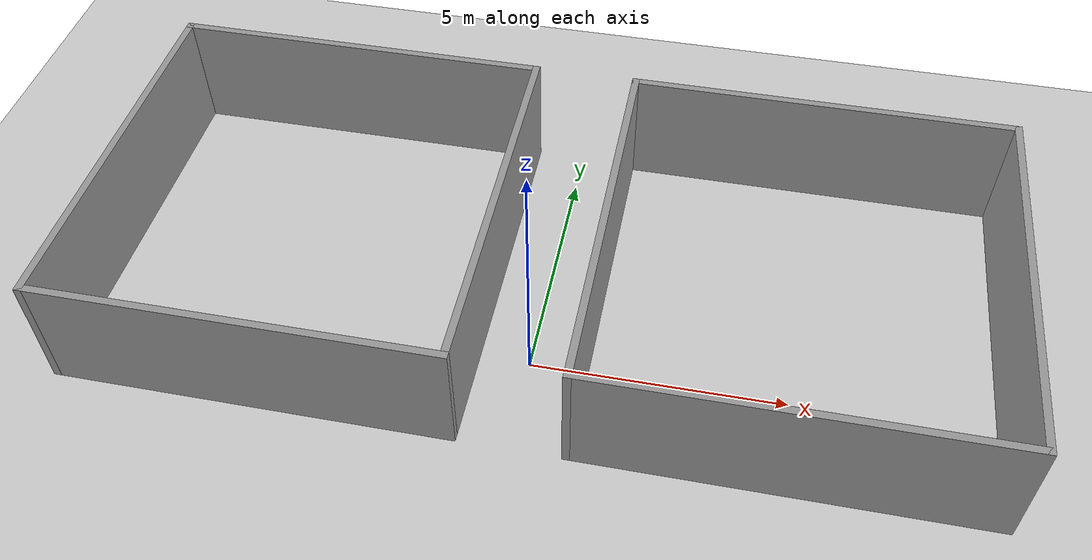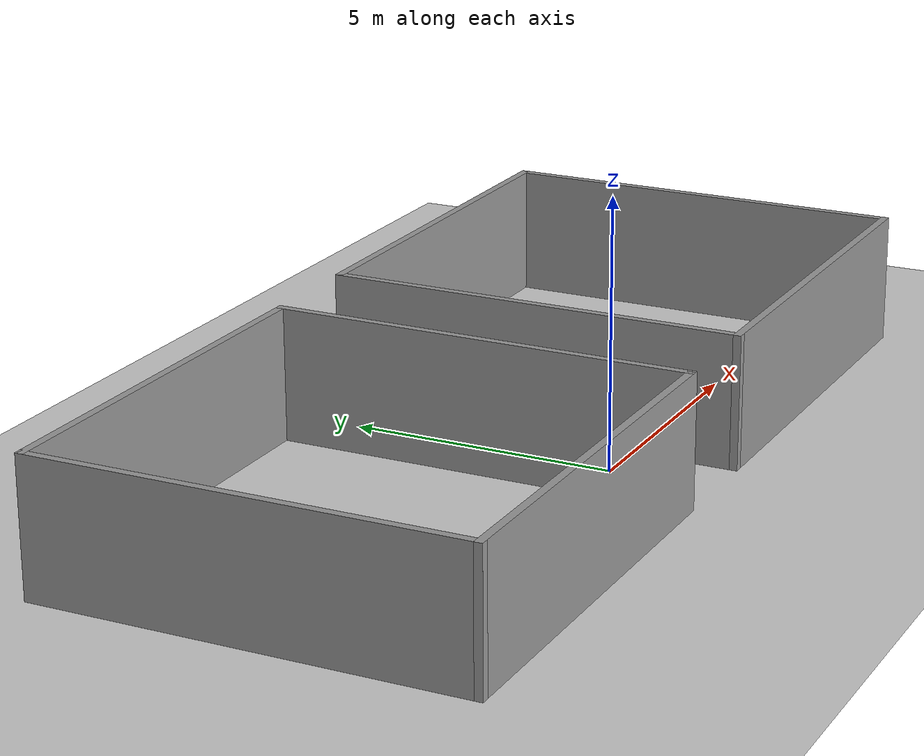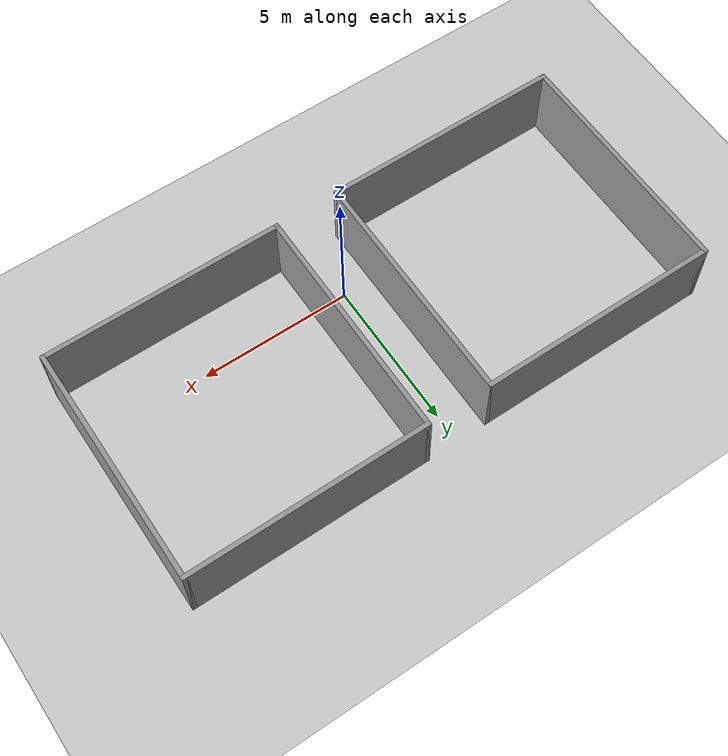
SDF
<?xml version="1.0" ?>
<sdf version="1.4">
  <world name="default">
    <include>
      <uri>model://ground_plane</uri>
    </include>
    <include>
      <uri>model://sun</uri>
    </include>
    <include>
      <uri>model://train_world</uri>
      <name>train_world</name>
      <pose>-5 2 0 0 0 0</pose>
    </include>
    <include>
      <uri>model://train_world</uri>
      <name>train_world</name>
      <pose>5 2 0 0 0 0</pose>
    </include>
    <gui fullscreen='0'>
      <camera name='user_camera'>
        <pose>0.8 0.0 12.0 0 1.5708 0</pose>
        <view_controller>orbit</view_controller>
      </camera>
    </gui>
  </world>
</sdf>

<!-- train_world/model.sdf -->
<sdf version='1.6'>
  <model name='train_world'>
    <pose frame=''>1.615 -5.565 0 0 -0 0</pose>
    <link name='Wall_0'>
      <collision name='Wall_0_Collision'>
        <geometry>
          <box>
            <size>8 0.15 2.5</size>
          </box>
        </geometry>
        <pose frame=''>0 0 1.25 0 -0 0</pose>
      </collision>
      <visual name='Wall_0_Visual'>
        <pose frame=''>0 0 1.25 0 -0 0</pose>
        <geometry>
          <box>
            <size>8 0.15 2.5</size>
          </box>
        </geometry>
        <material>
          <script>
            <uri>file://media/materials/scripts/gazebo.material</uri>
            <name>Gazebo/Grey</name>
          </script>
          <ambient>1 1 1 1</ambient>
        </material>
        <meta>
          <layer>0</layer>
        </meta>
      </visual>
      <pose frame=''>0 3.925 0 0 -0 0</pose>
    </link>
    <link name='Wall_5'>
      <collision name='Wall_5_Collision'>
        <geometry>
          <box>
            <size>8 0.15 2.5</size>
          </box>
        </geometry>
        <pose frame=''>0 0 1.25 0 -0 0</pose>
      </collision>
      <visual name='Wall_5_Visual'>
        <pose frame=''>0 0 1.25 0 -0 0</pose>
        <geometry>
          <box>
            <size>8 0.15 2.5</size>
          </box>
        </geometry>
        <material>
          <script>
            <uri>file://media/materials/scripts/gazebo.material</uri>
            <name>Gazebo/Grey</name>
          </script>
          <ambient>1 1 1 1</ambient>
        </material>
        <meta>
          <layer>0</layer>
        </meta>
      </visual>
      <pose frame=''>3.925 0 0 0 -0 -1.5708</pose>
    </link>
    <link name='Wall_7'>
      <collision name='Wall_7_Collision'>
        <geometry>
          <box>
            <size>8 0.15 2.5</size>
          </box>
        </geometry>
        <pose frame=''>0 0 1.25 0 -0 0</pose>
      </collision>
      <visual name='Wall_7_Visual'>
        <pose frame=''>0 0 1.25 0 -0 0</pose>
        <geometry>
          <box>
            <size>8 0.15 2.5</size>
          </box>
        </geometry>
        <material>
          <script>
            <uri>file://media/materials/scripts/gazebo.material</uri>
            <name>Gazebo/Grey</name>
          </script>
          <ambient>1 1 1 1</ambient>
        </material>
        <meta>
          <layer>0</layer>
        </meta>
      </visual>
      <pose frame=''>0 -3.925 0 0 -0 3.14159</pose>
    </link>
    <link name='Wall_9'>
      <collision name='Wall_9_Collision'>
        <geometry>
          <box>
            <size>8 0.15 2.5</size>
          </box>
        </geometry>
        <pose frame=''>0 0 1.25 0 -0 0</pose>
      </collision>
      <visual name='Wall_9_Visual'>
        <pose frame=''>0 0 1.25 0 -0 0</pose>
        <geometry>
          <box>
            <size>8 0.15 2.5</size>
          </box>
        </geometry>
        <material>
          <script>
            <uri>file://media/materials/scripts/gazebo.material</uri>
            <name>Gazebo/Grey</name>
          </script>
          <ambient>1 1 1 1</ambient>
        </material>
        <meta>
          <layer>0</layer>
        </meta>
      </visual>
      <pose frame=''>-3.925 0 0 0 -0 1.5708</pose>
    </link>
    <static>1</static>
  </model>
</sdf>
